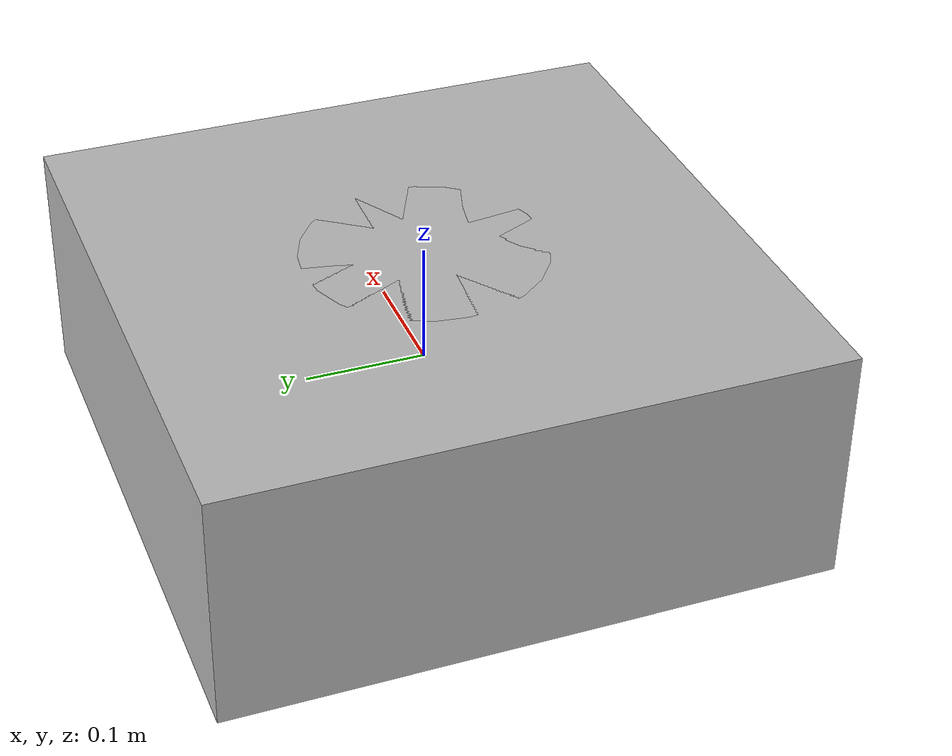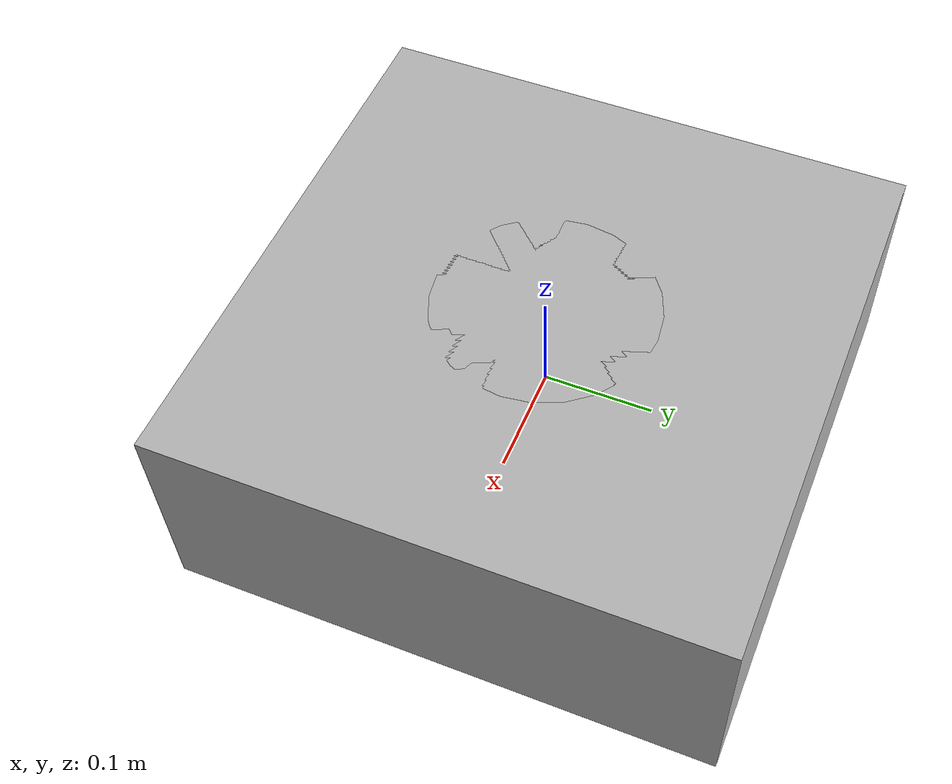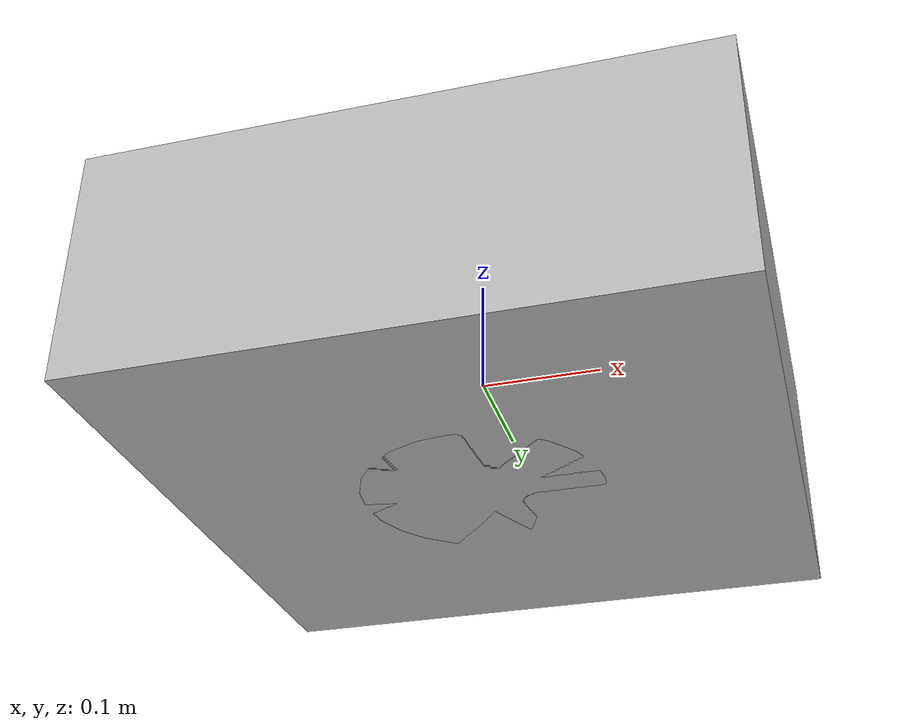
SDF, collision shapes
<?xml version="1.0"?>
<sdf version="1.7">
  <model name="drone_model">
    <!-- Drone body -->
    <link name="body">
      <collision name="collision">
        <geometry>
          <box>
            <size>0.5 0.5 0.2</size>
          </box>
        </geometry>
      </collision>
      <visual name="visual">
        <geometry>
          <mesh>
            <uri>model://drone_mesh.dae</uri>
          </mesh>
        </geometry>
        <material>
          <script>
            <uri>model://drone_material.script</uri>
          </script>
        </material>
      </visual>
    </link>

    <!-- Drone propellers -->
    <link name="propeller1">
      <collision name="collision">
        <geometry>
          <cylinder>
            <radius>0.1</radius>
            <length>0.2</length>
          </cylinder>
        </geometry>
      </collision>
      <visual name="visual">
        <geometry>
          <mesh>
            <uri>model://propeller_mesh.dae</uri>
          </mesh>
        </geometry>
        <material>
          <script>
            <uri>model://propeller_material.script</uri>
          </script>
        </material>
      </visual>
    </link>

    <link name="propeller2">
      <collision name="collision">
        <geometry>
          <cylinder>
            <radius>0.1</radius>
            <length>0.2</length>
          </cylinder>
        </geometry>
      </collision>
      <visual name="visual">
        <geometry>
          <mesh>
            <uri>model://propeller_mesh.dae</uri>
          </mesh>
        </geometry>
        <material>
          <script>
            <uri>model://propeller_material.script</uri>
          </script>
        </material>
      </visual>
    </link>

    <!-- Drone sensors -->
    <sensor name="camera" type="camera">
      <camera>
        <horizontal_fov>1.047</horizontal_fov>
        <image>
          <width>640</width>
          <height>480</height>
        </image>
        <clip>
          <near>0.1</near>
          <far>100</far>
        </clip>
      </camera>
    </sensor>

    <sensor name="lidar" type="ray">
      <ray>
        <scan>
          <horizontal>
            <samples>720</samples>
            <resolution>1</resolution>
          </horizontal>
          <vertical>
            <samples>1</samples>
            <resolution>1</resolution>
          </vertical>
        </scan>
        <range>
          <min>0.1</min>
          <max>100</max>
        </range>
      </ray>
    </sensor>

    <!-- Drone plugins -->
    <plugin name="gazebo_plugin" filename="libgazebo_plugin.so">
      <ros2_node>control_drone</ros2_node>
    </plugin>

    <plugin name="ros_plugin" filename="libros_plugin.so">
      <ros2_node>yolo_detection</ros2_node>
    </plugin>

    <plugin name="rviz_plugin" filename="librviz_plugin.so">
      <ros2_node>visualize_results</ros2_node>
    </plugin>
<plugin name="wind_plugin" filename="libgazebo_wind_plugin.so">
  <frameId>base_link</frameId>
  <linkName>base_link</linkName>
  <robotNamespace/>
  <windForceMean>1 0 0</windForceMean>
  <windForceMax>3 3 3</windForceMax>
  <windForceVariance>0.5 0.5 0.5</windForceVariance>
  <windGustDuration>2</windGustDuration>
</plugin>
  </model>
</sdf>
